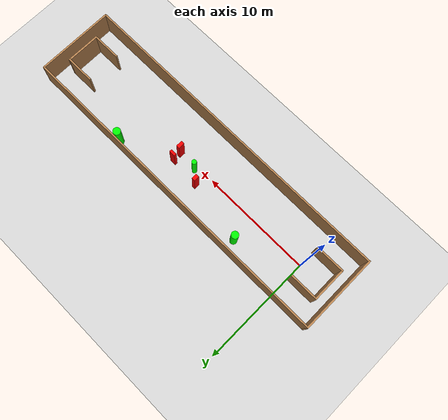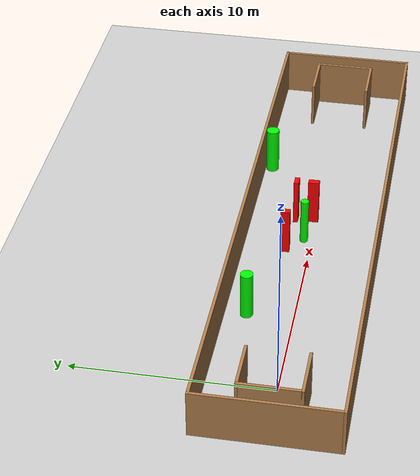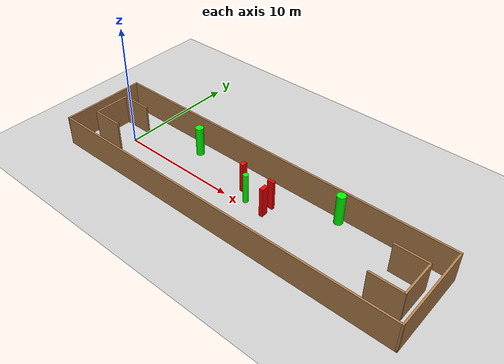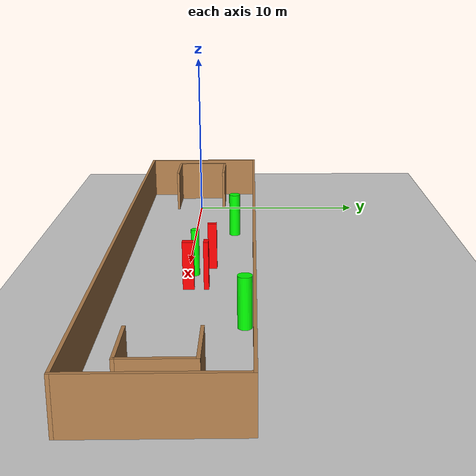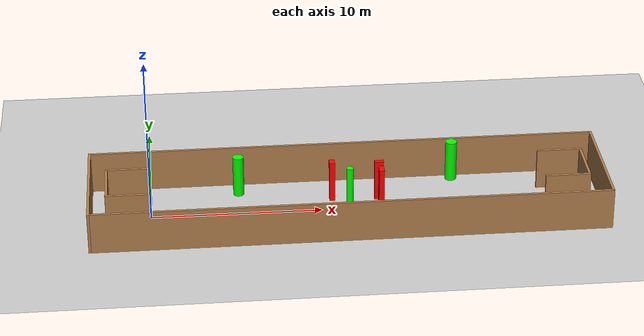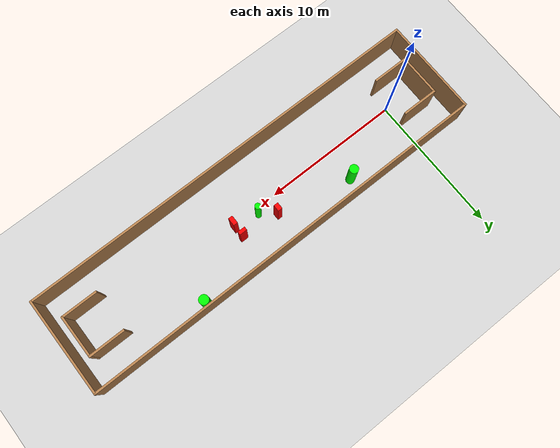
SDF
<sdf version="1.7">
 <world name="default">
  <light name="sun" type="directional">
   <pose>0 0 10 0 -0 0</pose>
   <diffuse>0.8 0.8 0.8 1</diffuse>
   <specular>0.2 0.2 0.2 1</specular>
   <attenuation>
    <range>1000</range>
    <constant>0.9</constant>
    <linear>0.01</linear>
    <quadratic>0.001</quadratic>
   </attenuation>
   <direction>-0.5 0.1 -0.9</direction>
   <spot><inner_angle>0</inner_angle><outer_angle>0</outer_angle><falloff>0</falloff></spot>
  </light>
  <model name="ground_plane">
   <static>1</static>
   <link name="link">
    <collision name="collision">
     <geometry><plane><normal>0 0 1</normal><size>100 100</size></plane></geometry>
     <surface>
      <contact><collide_bitmask>65535</collide_bitmask></contact>
      <friction><ode><mu>100</mu><mu2>50</mu2></ode></friction>
     </surface>
    </collision>
    <visual name="visual">
     <cast_shadows>0</cast_shadows>
     <geometry><plane><normal>0 0 1</normal><size>100 100</size></plane></geometry>
     <material>
      <script><uri>file://media/materials/scripts/gazebo.material</uri><name>Gazebo/Grey</name></script>
     </material>
    </visual>
   </link>
  </model>
  <gravity>0 0 -9.8</gravity>
  <magnetic_field>6e-06 2.3e-05 -4.2e-05</magnetic_field>
  <atmosphere type="adiabatic"/>
  <physics type="ode">
   <max_step_size>0.001</max_step_size>
   <real_time_factor>1</real_time_factor>
   <real_time_update_rate>1000</real_time_update_rate>
  </physics>
  <scene><ambient>0.4 0.4 0.4 1</ambient><background>0.7 0.7 0.7 1</background><shadows>1</shadows></scene>
  <spherical_coordinates>
   <surface_model>EARTH_WGS84</surface_model>
   <latitude_deg>0</latitude_deg>
   <longitude_deg>0</longitude_deg>
   <elevation>0</elevation>
   <heading_deg>0</heading_deg>
  </spherical_coordinates>
  <model name="my_base_walls">
   <link name="Wall_0">
    <collision name="Wall_0_Collision">
     <geometry><box><size>7.15 0.15 2.5</size></box></geometry>
     <pose>0 0 1.25 0 -0 0</pose>
    </collision>
    <visual name="Wall_0_Visual">
     <pose>0 0 1.25 0 -0 0</pose>
     <geometry><box><size>7.15 0.15 2.5</size></box></geometry>
     <material>
      <script><uri>file://media/materials/scripts/gazebo.material</uri><name>Gazebo/Wood</name></script>
      <ambient>1 1 1 1</ambient>
     </material>
     <meta><layer>0</layer></meta>
    </visual>
    <pose>-15 0 0 0 -0 1.5708</pose>
   </link>
   <link name="Wall_10">
    <collision name="Wall_10_Collision">
     <geometry><box><size>2.65 0.15 2.5</size></box></geometry>
     <pose>0 0 1.25 0 -0 0</pose>
    </collision>
    <visual name="Wall_10_Visual">
     <pose>0 0 1.25 0 -0 0</pose>
     <geometry><box><size>2.65 0.15 2.5</size></box></geometry>
     <material>
      <script><uri>file://media/materials/scripts/gazebo.material</uri><name>Gazebo/Wood</name></script>
      <ambient>1 1 1 1</ambient>
     </material>
     <meta><layer>0</layer></meta>
    </visual>
    <pose>-12.75 -1.5 0 0 -0 0</pose>
   </link>
   <link name="Wall_12">
    <collision name="Wall_12_Collision">
     <geometry><box><size>2.65 0.15 2.5</size></box></geometry>
     <pose>0 0 1.25 0 -0 0</pose>
    </collision>
    <visual name="Wall_12_Visual">
     <pose>0 0 1.25 0 -0 0</pose>
     <geometry><box><size>2.65 0.15 2.5</size></box></geometry>
     <material>
      <script><uri>file://media/materials/scripts/gazebo.material</uri><name>Gazebo/Wood</name></script>
      <ambient>1 1 1 1</ambient>
     </material>
     <meta><layer>0</layer></meta>
    </visual>
    <pose>-12.75 1.5 0 0 -0 0</pose>
   </link>
   <link name="Wall_14">
    <collision name="Wall_14_Collision">
     <geometry><box><size>3.15 0.15 2.5</size></box></geometry>
     <pose>0 0 1.25 0 -0 0</pose>
    </collision>
    <visual name="Wall_14_Visual">
     <pose>0 0 1.25 0 -0 0</pose>
     <geometry><box><size>3.15 0.15 2.5</size></box></geometry>
     <material>
      <script><uri>file://media/materials/scripts/gazebo.material</uri><name>Gazebo/Wood</name></script>
      <ambient>1 1 1 1</ambient>
     </material>
     <meta><layer>0</layer></meta>
    </visual>
    <pose>14 0 0 0 -0 -1.5708</pose>
   </link>
   <link name="Wall_15">
    <collision name="Wall_15_Collision">
     <geometry><box><size>2.65 0.15 2.5</size></box></geometry>
     <pose>0 0 1.25 0 -0 0</pose>
    </collision>
    <visual name="Wall_15_Visual">
     <pose>0 0 1.25 0 -0 0</pose>
     <geometry><box><size>2.65 0.15 2.5</size></box></geometry>
     <material>
      <script><uri>file://media/materials/scripts/gazebo.material</uri><name>Gazebo/Wood</name></script>
      <ambient>1 1 1 1</ambient>
     </material>
     <meta><layer>0</layer></meta>
    </visual>
    <pose>12.75 -1.5 0 0 -0 3.14159</pose>
   </link>
   <link name="Wall_17">
    <collision name="Wall_17_Collision">
     <geometry><box><size>2.65 0.15 2.5</size></box></geometry>
     <pose>0 0 1.25 0 -0 0</pose>
    </collision>
    <visual name="Wall_17_Visual">
     <pose>0 0 1.25 0 -0 0</pose>
     <geometry><box><size>2.65 0.15 2.5</size></box></geometry>
     <material>
      <script><uri>file://media/materials/scripts/gazebo.material</uri><name>Gazebo/Wood</name></script>
      <ambient>1 1 1 1</ambient>
     </material>
     <meta><layer>0</layer></meta>
    </visual>
    <pose>12.75 1.5 0 0 -0 3.14159</pose>
   </link>
   <link name="Wall_2">
    <collision name="Wall_2_Collision">
     <geometry><box><size>30.15 0.15 2.5</size></box></geometry>
     <pose>0 0 1.25 0 -0 0</pose>
    </collision>
    <visual name="Wall_2_Visual">
     <pose>0 0 1.25 0 -0 0</pose>
     <geometry><box><size>30.15 0.15 2.5</size></box></geometry>
     <material>
      <script><uri>file://media/materials/scripts/gazebo.material</uri><name>Gazebo/Wood</name></script>
      <ambient>1 1 1 1</ambient>
     </material>
     <meta><layer>0</layer></meta>
    </visual>
    <pose>-0 -3.5 0 0 -0 0</pose>
   </link>
   <link name="Wall_4">
    <collision name="Wall_4_Collision">
     <geometry><box><size>30.15 0.15 2.5</size></box></geometry>
     <pose>0 0 1.25 0 -0 0</pose>
    </collision>
    <visual name="Wall_4_Visual">
     <pose>0 0 1.25 0 -0 0</pose>
     <geometry><box><size>30.15 0.15 2.5</size></box></geometry>
     <material>
      <script><uri>file://media/materials/scripts/gazebo.material</uri><name>Gazebo/Wood</name></script>
      <ambient>1 1 1 1</ambient>
     </material>
     <meta><layer>0</layer></meta>
    </visual>
    <pose>-0 3.5 0 0 -0 0</pose>
   </link>
   <link name="Wall_6">
    <collision name="Wall_6_Collision">
     <geometry><box><size>7.15 0.15 2.5</size></box></geometry>
     <pose>0 0 1.25 0 -0 0</pose>
    </collision>
    <visual name="Wall_6_Visual">
     <pose>0 0 1.25 0 -0 0</pose>
     <geometry><box><size>7.15 0.15 2.5</size></box></geometry>
     <material>
      <script><uri>file://media/materials/scripts/gazebo.material</uri><name>Gazebo/Wood</name></script>
      <ambient>1 1 1 1</ambient>
     </material>
     <meta><layer>0</layer></meta>
    </visual>
    <pose>15 0 0 0 -0 -1.5708</pose>
   </link>
   <link name="Wall_9">
    <collision name="Wall_9_Collision">
     <geometry><box><size>3.15 0.15 2.5</size></box></geometry>
     <pose>0 0 1.25 0 -0 0</pose>
    </collision>
    <visual name="Wall_9_Visual">
     <pose>0 0 1.25 0 -0 0</pose>
     <geometry><box><size>3.15 0.15 2.5</size></box></geometry>
     <material>
      <script><uri>file://media/materials/scripts/gazebo.material</uri><name>Gazebo/Wood</name></script>
      <ambient>1 1 1 1</ambient>
     </material>
     <meta><layer>0</layer></meta>
    </visual>
    <pose>-14 0 0 0 -0 -1.5708</pose>
   </link>
   <static>1</static>
   <pose>11.5 0 0 0 -0 0</pose>
  </model>
  <model name="cylinder1">
   <static>1</static>
   <link name="link">
    <inertial>
     <mass>1</mass>
     <inertia><ixx>0.5</ixx><ixy>0</ixy><ixz>0</ixz><iyy>0.5</iyy><iyz>0</iyz><izz>1</izz></inertia>
    </inertial>
    <collision name="collision">
     <geometry><cylinder><radius>0.32114447523517087</radius><length>2.5</length></cylinder></geometry>
    </collision>
    <visual name="visual">
     <geometry><cylinder><radius>0.32114447523517087</radius><length>2.5</length></cylinder></geometry>
     <material>
      <ambient>0 1 0 1</ambient>
      <diffuse>0 1 0 1</diffuse>
      <specular>0.1 0.1 0.1 1</specular>
      <emissive>0 0 0 0</emissive>
     </material>
    </visual>
   </link>
   <pose>5.223231505279417 2.347047374866655 1.25 0 0 0</pose>
  </model>
  <model name="cylinder2">
   <static>1</static>
   <link name="link">
    <inertial>
     <mass>1</mass>
     <inertia><ixx>0.5</ixx><ixy>0</ixy><ixz>0</ixz><iyy>0.5</iyy><iyz>0</iyz><izz>1</izz></inertia>
    </inertial>
    <collision name="collision">
     <geometry><cylinder><radius>0.3444384624184029</radius><length>2.5</length></cylinder></geometry>
    </collision>
    <visual name="visual">
     <geometry><cylinder><radius>0.3444384624184029</radius><length>2.5</length></cylinder></geometry>
     <material>
      <ambient>0 1 0 1</ambient>
      <diffuse>0 1 0 1</diffuse>
      <specular>0.1 0.1 0.1 1</specular>
      <emissive>0 0 0 0</emissive>
     </material>
    </visual>
   </link>
   <pose>17.99976997136322 3.0602240353846017 1.25 0 0 0</pose>
  </model>
  <model name="cylinder3">
   <static>1</static>
   <link name="link">
    <inertial>
     <mass>1</mass>
     <inertia><ixx>0.5</ixx><ixy>0</ixy><ixz>0</ixz><iyy>0.5</iyy><iyz>0</iyz><izz>1</izz></inertia>
    </inertial>
    <collision name="collision">
     <geometry><cylinder><radius>0.21319853070607542</radius><length>2.5</length></cylinder></geometry>
    </collision>
    <visual name="visual">
     <geometry><cylinder><radius>0.21319853070607542</radius><length>2.5</length></cylinder></geometry>
     <material>
      <ambient>0 1 0 1</ambient>
      <diffuse>0 1 0 1</diffuse>
      <specular>0.1 0.1 0.1 1</specular>
      <emissive>0 0 0 0</emissive>
     </material>
    </visual>
   </link>
   <pose>11.682774092095636 0.41730674339095586 1.25 0 0 0</pose>
  </model>
  <model name="box1">
   <static>1</static>
   <link name="link">
    <inertial>
     <mass>1</mass>
     <inertia><ixx>0.083</ixx><ixy>0</ixy><ixz>0</ixz><iyy>0.083</iyy><iyz>0</iyz><izz>0.083</izz></inertia>
    </inertial>
    <collision name="collision">
     <geometry><box><size>0.3108898567835251 0.5739279790788259 2.5</size></box></geometry>
    </collision>
    <visual name="visual">
     <geometry><box><size>0.3108898567835251 0.5739279790788259 2.5</size></box></geometry>
     <material>
      <ambient>1 0 0 1</ambient>
      <diffuse>1 0 0 1</diffuse>
      <specular>0.1 0.1 0.1 1</specular>
      <emissive>0 0 0 0</emissive>
     </material>
    </visual>
    <sensor name="my_contact" type="contact">
     <contact><collision>box_collision</collision><topic>__default_topic__</topic></contact>
    </sensor>
   </link>
   <pose>13.514868401261415 0.1913120934331749 1.25 0 0 0</pose>
  </model>
  <model name="box2">
   <static>1</static>
   <link name="link">
    <inertial>
     <mass>1</mass>
     <inertia><ixx>0.083</ixx><ixy>0</ixy><ixz>0</ixz><iyy>0.083</iyy><iyz>0</iyz><izz>0.083</izz></inertia>
    </inertial>
    <collision name="collision">
     <geometry><box><size>0.5462175236001447 0.2493821755840327 2.5</size></box></geometry>
    </collision>
    <visual name="visual">
     <geometry><box><size>0.5462175236001447 0.2493821755840327 2.5</size></box></geometry>
     <material>
      <ambient>1 0 0 1</ambient>
      <diffuse>1 0 0 1</diffuse>
      <specular>0.1 0.1 0.1 1</specular>
      <emissive>0 0 0 0</emissive>
     </material>
    </visual>
    <sensor name="my_contact" type="contact">
     <contact><collision>box_collision</collision><topic>__default_topic__</topic></contact>
    </sensor>
   </link>
   <pose>13.45408401689403 1.087628469778612 1.25 0 0 0</pose>
  </model>
  <model name="box3">
   <static>1</static>
   <link name="link">
    <inertial>
     <mass>1</mass>
     <inertia><ixx>0.083</ixx><ixy>0</ixy><ixz>0</ixz><iyy>0.083</iyy><iyz>0</iyz><izz>0.083</izz></inertia>
    </inertial>
    <collision name="collision">
     <geometry><box><size>0.3228183174166039 0.4700392841712631 2.5</size></box></geometry>
    </collision>
    <visual name="visual">
     <geometry><box><size>0.3228183174166039 0.4700392841712631 2.5</size></box></geometry>
     <material>
      <ambient>1 0 0 1</ambient>
      <diffuse>1 0 0 1</diffuse>
      <specular>0.1 0.1 0.1 1</specular>
      <emissive>0 0 0 0</emissive>
     </material>
    </visual>
    <sensor name="my_contact" type="contact">
     <contact><collision>box_collision</collision><topic>__default_topic__</topic></contact>
    </sensor>
   </link>
   <pose>10.692722250687662 1.2674877196655903 1.25 0 0 0</pose>
  </model>
 </world>
</sdf>
